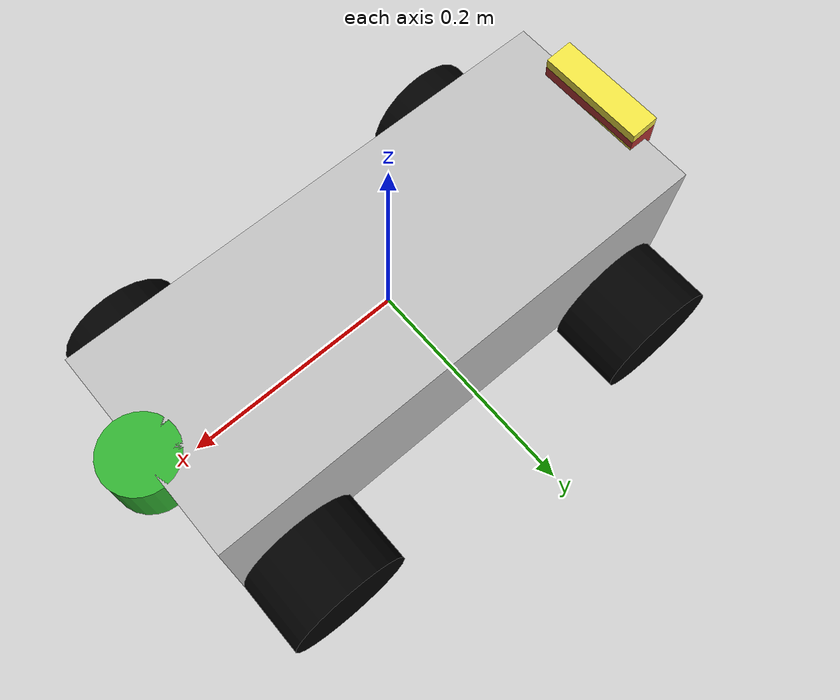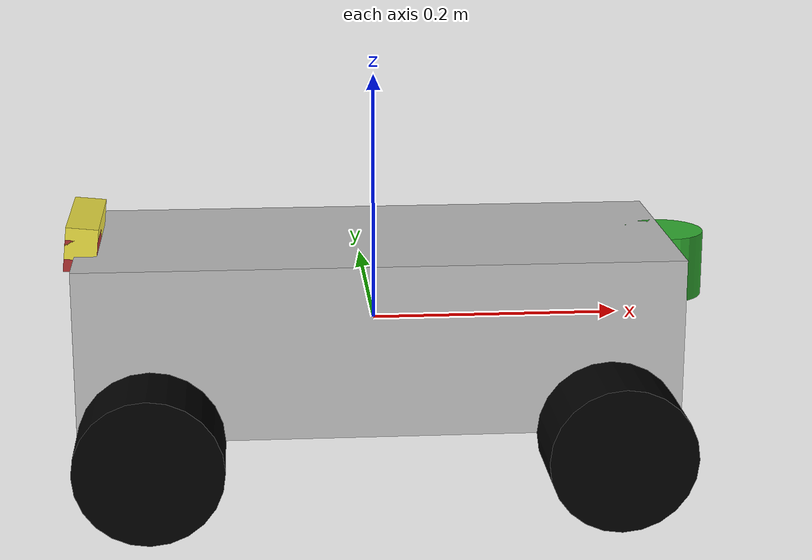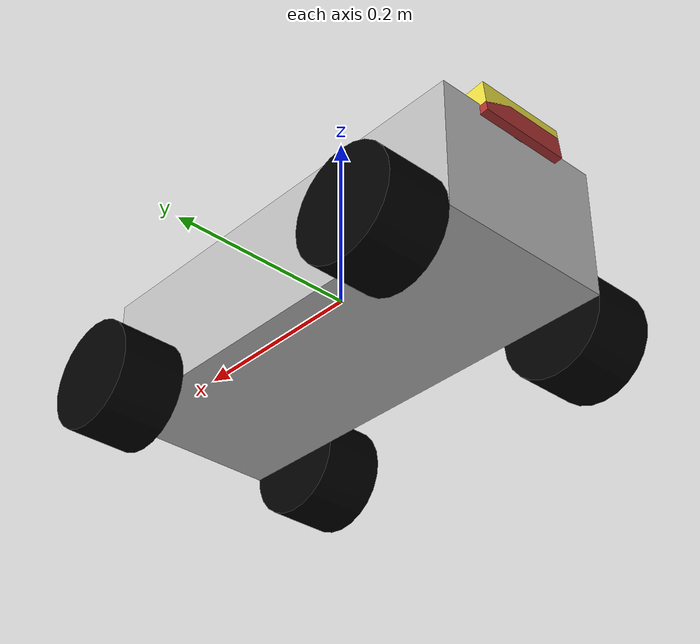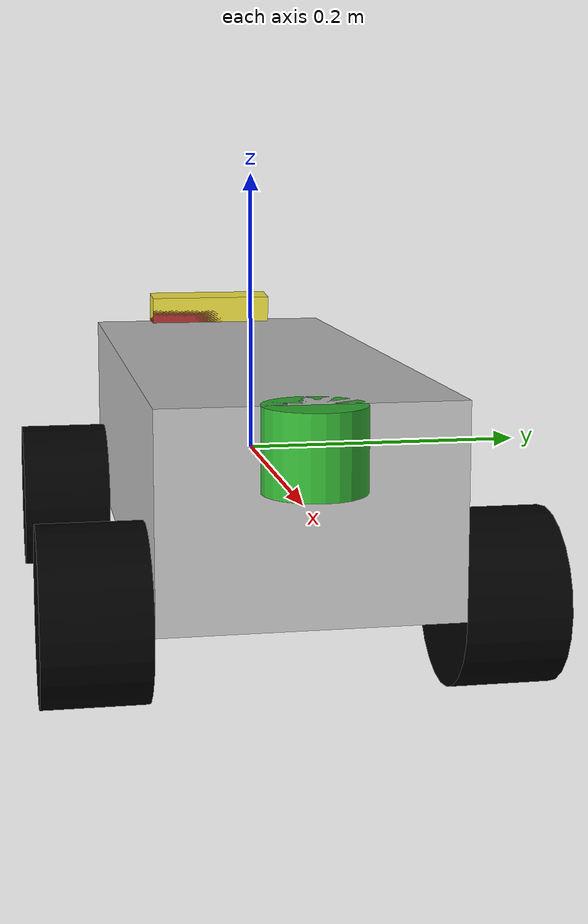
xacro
<?xml version="1.0"?>

<robot name="ackermann_steering_vehicle" xmlns:xacro="http://www.ros.org/wiki/xacro">

  <!--
  From here:
  https://github.com/lucasmazzetto/gazebo_ackermann_steering_vehicle/blob/main/model/vehicle.xacro
  -->
  <!-- Arguments -->
  <xacro:arg name="body_length" default=".474" />
  <xacro:arg name="body_width" default=".192" />
  <xacro:arg name="body_height" default="0.138" />
  <xacro:arg name="body_density" default="1000.0" />
  <xacro:arg name="wheel_radius" default="0.0575" />
  <xacro:arg name="wheel_width" default="0.068" />
  <xacro:arg name="wheel_base" default="0.275" />
  <xacro:arg name="wheel_density" default="1000.0" />
  <xacro:arg name="max_steering_angle" default="0.6108" />
  <xacro:arg name="max_steering_angular_velocity" default="1.570796" />
  <xacro:arg name="max_steering_effort" default="1.0" />
  <xacro:arg name="max_velocity" default="1.0" />
  <xacro:arg name="max_effort" default="10.0" />
  <xacro:arg name="camera_box_size" default="0.01" />
  <xacro:arg name="camera_stick_size" default="0.01" />
  <xacro:arg name="camera_pitch" default="0.1" />
  <xacro:arg name="camera_fov" default="1.570796" />
  <xacro:arg name="camera_fps" default="30" />
  <xacro:arg name="image_width" default="640" />
  <xacro:arg name="image_height" default="480" />

  <!-- Mathematical Constants -->
  <xacro:property name="PI" value="3.14159265"/>

  <!-- Vehicle Properties -->
  <xacro:property name="body_length" value="$(arg body_length)"/>
  <xacro:property name="body_width" value="$(arg body_width)"/>
  <xacro:property name="body_height" value="$(arg body_height)"/>
  <xacro:property name="body_density" value="$(arg body_density)"/>
  <xacro:property name="wheel_radius" value="$(arg wheel_radius)"/>
  <xacro:property name="wheel_width" value="$(arg wheel_width)"/>
  <xacro:property name="wheel_density" value="$(arg wheel_density)"/>
  <xacro:property name="max_steering_angle" value="$(arg max_steering_angle)"/>
  <xacro:property name="max_steering_angular_velocity" value="$(arg max_steering_angular_velocity)"/>
  <xacro:property name="max_steering_effort" value="$(arg max_steering_effort)"/>
  <xacro:property name="max_velocity" value="$(arg max_velocity)"/>
  <xacro:property name="max_effort" value="$(arg max_effort)"/>
  <xacro:property name="camera_box_size" value="$(arg camera_box_size)"/>
  <xacro:property name="camera_stick_size" value="$(arg camera_stick_size)"/>
  <xacro:property name="camera_height" value="$(arg camera_height)"/>
  <xacro:property name="camera_pitch" value="$(arg camera_pitch)"/>
  <xacro:property name="camera_fov" value="$(arg camera_fov)"/>
  <xacro:property name="camera_fps" value="$(arg camera_fps)"/>
  <xacro:property name="image_width" value="$(arg image_width)"/>
  <xacro:property name="image_height" value="$(arg image_height)"/>

  <xacro:property name="body_mass" value="${body_density * body_length * body_height * body_width}"/>
  <xacro:property name="body_inertia_x" value="${1.0/12.0 * body_mass * (body_height*body_height + body_width*body_width)}"/>
  <xacro:property name="body_inertia_y" value="${1.0/12.0 * body_mass * (body_length*body_length + body_height*body_height)}"/>
  <xacro:property name="body_inertia_z" value="${1.0/12.0 * body_mass * (body_length*body_length + body_width*body_width)}"/>
  <xacro:property name="wheel_separation" value="${body_width + wheel_width}"/>
  <xacro:property name="wheel_offset" value="${body_length/2 - wheel_radius}"/>
  <xacro:property name="wheel_mass" value="${wheel_density * PI * wheel_radius * wheel_radius * wheel_width}"/>
  <xacro:property name="wheel_inertia_x" value="${1.0/12.0 * wheel_mass * (3*wheel_radius*wheel_radius + wheel_width*wheel_width)}"/>
  <xacro:property name="wheel_inertia_y" value="${1.0/12.0 * wheel_mass * (3*wheel_radius*wheel_radius + wheel_width*wheel_width)}"/>
  <xacro:property name="wheel_inertia_z" value="${1.0/2.0 * wheel_mass * wheel_radius * wheel_radius}"/>
  <xacro:property name="max_wheel_angular_velocity" value="${max_velocity / wheel_radius}"/>

  <xacro:property name="camera_length" value=".0254" />
  <xacro:property name="camera_width" value=".10" />
  <xacro:property name="camera_height" value="0.0254" />
  <xacro:property name="lidar_radius" value=".0325" />
  <xacro:property name="lidar_height" value="0.0528" />

  <!-- Macros -->
  <xacro:macro name="box_inertia" params="m x y z">
    <inertia ixx="${m*(y*y+z*z)/12}" ixy = "0" ixz = "0" iyy="${m*(x*x+z*z)/12}" iyz = "0" izz="${m*(x*x+z*z)/12}" />
  </xacro:macro>

  <!-- Materials -->
  <material name="gray_25">
    <color rgba="0.25 0.25 0.25 1.0"/>
  </material>

  <material name="gray_50">
    <color rgba="0.50 0.50 0.50 1.0"/>
  </material>

  <material name="gray_75">
    <color rgba="0.75 0.75 0.75 1.0"/>
  </material>

  <material name="camera_color">
    <color rgba="0.70 0.2 0.2 1.0"/>
  </material>

  <material name="lidar_color">
    <color rgba="0.2 0.7 0.2 1.0"/>
  </material>
  <!-- Links -->

  <!-- Body Link -->
  <link name="base_link">
  </link>

  <link name="body_link">
      <visual>
      <origin xyz="0.0 0.0 0.0" rpy="0.0 0.0 0.0"/>
      <geometry>
        <box size="${body_length} ${body_width} ${body_height}"/>
      </geometry>
      <material name="gray_75"/>
    </visual>
    <collision>
      <origin xyz="0.0 0.0 0.0" rpy="0.0 0.0 0.0"/>
      <geometry>
        <box size="${body_length} ${body_width} ${body_height}"/>
      </geometry>
    </collision>
    <xacro:box_inertia m="3000" x="${body_length}" y="${body_width}" z="${body_height}"/>
  </link>

  <!-- Front Left Wheel -->
  <link name="front_left_wheel_link">
    <visual>
      <origin xyz="0.0 0.0 0.0" rpy="1.570795 0.0 0.0"/>
      <geometry>
        <cylinder radius="${wheel_radius}" length="${wheel_width}"/>
      </geometry>
      <material name="wheel_material">
        <color rgba="0.0 0.0 0.0 1.0"/>
      </material>
    </visual>
    <collision>
      <origin xyz="0.0 0.0 0.0" rpy="1.570795 0.0 0.0"/>
      <geometry>
        <cylinder radius="${wheel_radius}" length="${wheel_width}"/>
      </geometry>
    </collision>
    <inertial>
      <mass value="${wheel_mass}"/>
      <inertia ixx="${wheel_inertia_x}" ixy="0.0" ixz="0.0" iyy="${wheel_inertia_y}" iyz="0" izz="${wheel_inertia_z}"/>
      <origin xyz="0.0 0.0 0.0" rpy="1.570795 0.0 0.0"/>
    </inertial>
  </link>

    <!-- Front Left Wheel Steering -->
  <link name="front_left_steering_link">
    <visual>
      <origin xyz="0.0 0.0 0.0" rpy="1.570795 0.0 0.0"/>
      <geometry>
        <cylinder length="0.001" radius="0.01"/>
      </geometry>
      <material name="wheel_material">
        <color rgba="0.0 0.0 0.0 1.0"/>
      </material>
    </visual>
    <collision>
      <origin xyz="0.0 0.0 0.0" rpy="1.570795 0.0 0.0"/>
      <geometry>
        <cylinder length="0.001" radius="0.01"/>
      </geometry>
    </collision>
    <inertial>
      <mass value="0.01"/>
      <inertia ixx="0.001" ixy="0.0" ixz="0.0" iyy="0.001" iyz="0.0" izz="0.001"/>
      <origin xyz="0.0 0.0 0.0" rpy="1.570795 0.0 0.0"/>
    </inertial>
  </link>

  <!-- Front Right Wheel -->
  <link name="front_right_wheel_link">
    <visual>
      <origin xyz="0.0 0.0 0.0" rpy="1.570795 0.0 0.0"/>
      <geometry>
        <cylinder radius="${wheel_radius}" length="${wheel_width}"/>
      </geometry>
      <material name="wheel_material">
        <color rgba="0.0 0.0 0.0 1.0"/>
      </material>
    </visual>
    <collision>
      <origin xyz="0.0 0.0 0.0" rpy="1.570795 0.0 0.0"/>
      <geometry>
        <cylinder radius="${wheel_radius}" length="${wheel_width}"/>
      </geometry>
    </collision>
    <inertial>
      <mass value="${wheel_mass}"/>
      <inertia ixx="${wheel_inertia_x}" ixy="0.0" ixz="0.0" iyy="${wheel_inertia_y}" iyz="0" izz="${wheel_inertia_z}"/>
      <origin xyz="0.0 0.0 0.0" rpy="1.570795 0.0 0.0"/>
    </inertial>
  </link>

  <!-- Front Right Wheel Steering -->
  <link name="front_right_steering_link">
    <visual>
      <origin xyz="0.0 0.0 0.0" rpy="1.570795 0.0 0.0"/>
      <geometry>
        <cylinder length="0.001" radius="0.01"/>
      </geometry>
      <material name="wheel_material">
        <color rgba="0.0 0.0 0.0 1.0"/>
      </material>
    </visual>
    <collision>
      <origin xyz="0.0 0.0 0.0" rpy="1.570795 0.0 0.0"/>
      <geometry>
        <cylinder length="0.001" radius="0.01"/>
      </geometry>
    </collision>
    <inertial>
      <mass value="0.01"/>
      <inertia ixx="0.001" ixy="0.0" ixz="0.0" iyy="0.001" iyz="0.0" izz="0.001"/>
      <origin xyz="0.0 0.0 0.0" rpy="1.570795 0.0 0.0"/>
    </inertial>
  </link>

  <!-- Rear Left Wheel -->
  <link name="rear_left_wheel_link">
    <visual>
      <origin xyz="0.0 0.0 0.0" rpy="1.570795 0.0 0.0"/>
      <geometry>
        <cylinder radius="${wheel_radius}" length="${wheel_width}"/>
      </geometry>
      <material name="wheel_material">
        <color rgba="0.0 0.0 0.0 1.0"/>
      </material>
    </visual>
    <collision>
      <origin xyz="0.0 0.0 0.0" rpy="1.570795 0.0 0.0"/>
      <geometry>
        <cylinder radius="${wheel_radius}" length="${wheel_width}"/>
      </geometry>
    </collision>
    <inertial>
      <mass value="2"/>
      <inertia ixx="${wheel_inertia_x}" ixy="0.0" ixz="0.0" iyy="${wheel_inertia_y}" iyz="0" izz="${wheel_inertia_z}"/>
      <origin xyz="0.0 0.0 0.0" rpy="1.570795 0.0 0.0"/>
    </inertial>
  </link>

  <!-- Rear Right Wheel -->
  <link name="rear_right_wheel_link">
    <visual>
      <origin xyz="0.0 0.0 0.0" rpy="1.570795 0.0 0.0"/>
      <geometry>
        <cylinder radius="${wheel_radius}" length="${wheel_width}"/>
      </geometry>
      <material name="wheel_material">
        <color rgba="0.0 0.0 0.0 1.0"/>
      </material>
    </visual>
    <collision>
      <origin xyz="0.0 0.0 0.0" rpy="1.570795 0.0 0.0"/>
      <geometry>
        <cylinder radius="${wheel_radius}" length="${wheel_width}"/>
      </geometry>
    </collision>
    <inertial>
      <mass value="2"/>
      <inertia ixx="${wheel_inertia_x}" ixy="0.0" ixz="0.0" iyy="${wheel_inertia_y}" iyz="0" izz="${wheel_inertia_z}"/>
      <origin xyz="0.0 0.0 0.0" rpy="1.570795 0.0 0.0"/>
    </inertial>
  </link>

  <!-- Camera Stick Link -->
  <link name="camera_stick_link">
    <collision>
      <origin xyz="0 0 0" rpy="0 0 0"/>
      <geometry>
        <box size="${camera_stick_size} ${camera_stick_size} ${camera_height}"/>
      </geometry>
    </collision>

    <visual>
      <origin xyz="0 0 0" rpy="0 0 0"/>
      <geometry>
        <box size="${camera_stick_size} ${camera_stick_size} ${camera_height}"/>
      </geometry>

      <material name="camera_stick_material">
        <color rgba="0.25 0.25 0.25 1.0"/>
      </material>
    </visual>

    <inertial>
      <mass value="1e-5" />
      <origin xyz="0 0 0" rpy="0 0 0"/>
      <inertia ixx="1e-6" ixy="0" ixz="0" iyy="1e-6" iyz="0" izz="1e-6" />
    </inertial>
  </link>

  <!-- Camera Link -->
  <link name="camera_link">
    <collision>
      <origin xyz="0 0 0" rpy="0 0 0"/>
      <geometry>
        <box size="${camera_length} ${camera_width} ${camera_height}"/>
      </geometry>
    </collision>

    <visual>
      <origin xyz="0 0 0" rpy="0 0 0"/>
      <geometry>
        <box size="${camera_length} ${camera_width} ${camera_height}"/>
      </geometry>

      <material name="camera_color" />
    </visual>

    <inertial>
      <mass value="1e-5" />
      <origin xyz="0 0 0" rpy="0 0 0"/>
      <inertia ixx="1e-6" ixy="0" ixz="0" iyy="1e-6" iyz="0" izz="1e-6" />
    </inertial>
  </link>

  <!-- Lidar Link -->
  <link name="lidar_link">
    <collision>
      <origin xyz="0 0 0" rpy="0 0 0"/>
      <geometry>
        <cylinder radius="${lidar_radius}" length="${lidar_height}"/>
      </geometry>
    </collision>

    <visual>
      <origin xyz="0 0 0" rpy="0 0 0"/>
      <geometry>
        <cylinder radius="${lidar_radius}" length="${lidar_height}"/>
      </geometry>
      <material name="lidar_color"/>
    </visual>
  </link>

  <!-- IMU Link -->
  <link name="imu_link">
    <collision>
      <origin xyz="0 0 0" rpy="0 0 0"/>
      <geometry>
        <box size="${camera_length} ${camera_width} ${camera_height}"/>
      </geometry>
    </collision>

    <visual>
      <origin xyz="0 0 0" rpy="0 0 0"/>
      <geometry>
        <box size="${camera_length} ${camera_width} ${camera_height}"/>
      </geometry>
    </visual>

    <xacro:box_inertia m="0.1" x="0.1" y="0.1" z="0.1"/>
  </link>

  <link name="steering_wheel_link">
    <inertial>
      <mass value="1e-5" />
      <origin xyz="0 0 0" rpy="0 0 0"/>
      <inertia ixx="1e-6" ixy="0" ixz="0" iyy="1e-6" iyz="0" izz="1e-6" />
    </inertial>
  </link>

  <!-- Joints -->
  <joint name="body_joint" type="fixed">
    <origin xyz="0 0 0" rpy="0 0 0"/>
    <parent link="base_link"/>
    <child link="body_link"/>
  </joint>

  <!-- Front Left Steering Joint -->
  <joint name="front_left_steering_joint" type="revolute">
    <origin xyz="${wheel_offset} ${wheel_separation/2} -${body_height/2}" rpy="0 0 0"/>
    <parent link="base_link"/>
    <child link="front_left_steering_link"/>
    <axis xyz="0 0 1"/>
    <limit effort="${max_steering_effort}" lower="${-max_steering_angle}" upper="${max_steering_angle}" velocity="${max_steering_angular_velocity}"/>
    <dynamics damping="0.1" friction="0.1"/>
  </joint>

  <!-- Front Left Wheel Joint -->
  <joint name="front_left_wheel_joint" type="continuous">
    <origin xyz="0 0 0" rpy="0 0 0"/>
    <parent link="front_left_steering_link"/>
    <child link="front_left_wheel_link"/>
    <axis xyz="0 1 0"/>
    <limit effort="${max_effort}" velocity="${max_wheel_angular_velocity}"/>
    <dynamics damping="0.1" friction="0.1"/>
  </joint>

  <!-- Front Right Steering Joint -->
  <joint name="front_right_steering_joint" type="revolute">
    <origin xyz="${wheel_offset} ${-wheel_separation/2} -${body_height/2}" rpy="0 0 0"/>
    <parent link="base_link"/>
    <child link="front_right_steering_link"/>
    <axis xyz="0 0 1"/>
    <limit effort="${max_steering_effort}" lower="${-max_steering_angle}" upper="${max_steering_angle}" velocity="${max_steering_angular_velocity}"/>
    <dynamics damping="0.1" friction="0.1"/>
  </joint>

  <!-- Front Right Wheel Joint -->
  <joint name="front_right_wheel_joint" type="continuous">
    <origin xyz="0 0 0" rpy="0 0 0"/>
    <parent link="front_right_steering_link"/>
    <child link="front_right_wheel_link"/>
    <axis xyz="0 1 0"/>
    <limit effort="${max_effort}" velocity="${max_wheel_angular_velocity}"/>
    <dynamics damping="0.1" friction="0.1"/>
  </joint>

  <!-- Rear Left Wheel Joint -->
  <joint name="rear_left_wheel_joint" type="continuous">
    <origin xyz="-${wheel_offset} ${wheel_separation/2} -${body_height/2}" rpy="0 0 0"/>
    <parent link="base_link"/>
    <child link="rear_left_wheel_link"/>
    <axis xyz="0 1 0"/>
    <limit effort="${max_effort}" velocity="${max_wheel_angular_velocity}"/>
    <dynamics damping="0.1" friction="0.1"/>
  </joint>

  <!-- Rear Right Wheel Joint -->
  <joint name="rear_right_wheel_joint" type="continuous">
    <origin xyz="-${wheel_offset} ${-wheel_separation/2} -${body_height/2}" rpy="0 0 0"/>
    <parent link="base_link"/>
    <child link="rear_right_wheel_link"/>
    <axis xyz="0 1 0"/>
    <limit effort="${max_effort}" velocity="${max_wheel_angular_velocity}"/>
    <dynamics damping="0.1" friction="0.1"/>
  </joint>

  <!-- Camera Stick Joint -->
  <joint name="camera_stick_joint" type="fixed">
    <axis xyz="0 1 0" />
    <origin xyz="-${body_length/2 - camera_stick_size/2} 0 ${body_height/2}" rpy="0.0 0.0 0.0"/>
    <parent link="base_link"/>
    <child link="camera_stick_link"/>
  </joint>

  <!-- Camera Joint -->
  <joint name="camera_joint" type="fixed">
    <axis xyz="0 1 0" />
    <origin xyz="0.0 0.0 0.0" rpy="0 ${camera_pitch} 0"/>
    <parent link="camera_stick_link"/>
    <child link="camera_link"/>
  </joint>

  <!-- Lidar Joint -->
  <joint name="lidar_joint" type="fixed">
    <axis xyz="0 1 0"/>
    <origin xyz="${body_length/2} 0 ${body_height/2 - lidar_height/2}" rpy="0.0 0.0 0.0"/>
    <parent link="base_link"/>
    <child link="lidar_link"/>
  </joint>

  <!-- IMU Joint -->
  <joint name="imu_joint" type="fixed">
    <parent link="camera_link"/>
    <child link="imu_link"/>
    <origin xyz="0 0 0.01"/>
  </joint>

  <joint name="steering_wheel_joint" type="continuous">
    <parent link="base_link"/>
    <child link="steering_wheel_link"/>
    <origin xyz="0 0 0.0"/>
  </joint>
  <!-- Gazebo Parameters -->
  <gazebo reference="base_link">
    <mu1>0.0001</mu1>
    <mu2>0.0001</mu2>
  </gazebo>

  <gazebo reference="front_right_wheel_link">
    <mu1>100.0</mu1>
    <mu2>100.0</mu2>
  </gazebo>

  <gazebo reference="front_left_wheel_link">
    <mu1>100.0</mu1>
    <mu2>100.0</mu2>
  </gazebo>

  <gazebo reference="rear_right_wheel_link">
    <mu1>100.0</mu1>
    <mu2>100.0</mu2>
  </gazebo>

  <gazebo reference="rear_left_wheel_link">
    <mu1>100.0</mu1>
    <mu2>100.0</mu2>
  </gazebo>

  <!-- Gazebo Control -->
  <ros2_control name="GazeboSimSystem" type="system">
    <hardware>
      <plugin>gz_ros2_control/GazeboSimSystem</plugin>
    </hardware>

    <joint name="front_left_steering_joint">
      <command_interface name="position">
        <param name="min">${-max_steering_angle}</param>
        <param name="max">${max_steering_angle}</param>
      </command_interface>

      <state_interface name="position"/>
      <state_interface name="velocity"/>
      <state_interface name="effort"/>
    </joint>

    <joint name="front_right_steering_joint">
      <command_interface name="position">
        <param name="min">${-max_steering_angle}</param>
        <param name="max">${max_steering_angle}</param>
      </command_interface>

      <state_interface name="position"/>
      <state_interface name="velocity"/>
      <state_interface name="effort"/>
    </joint>

    <joint name="rear_left_wheel_joint">
      <command_interface name="velocity">
        <param name="min">${-max_wheel_angular_velocity}</param>
        <param name="max">${max_wheel_angular_velocity}</param>
      </command_interface>

      <state_interface name="position"/>
      <state_interface name="velocity"/>
      <state_interface name="effort"/>
    </joint>

    <joint name="rear_right_wheel_joint">
      <command_interface name="velocity">
        <param name="min">${-max_wheel_angular_velocity}</param>
        <param name="max">${max_wheel_angular_velocity}</param>
      </command_interface>

      <state_interface name="position"/>
      <state_interface name="velocity"/>
      <state_interface name="effort"/>
    </joint>

    <joint name="steering_wheel_joint">
    </joint>
  </ros2_control>

  <!-- Gazebo Plugins -->
  <gazebo>
    <plugin
      filename="libignition-gazebo-ackermann-steering-system"
      name="ignition::gazebo::systems::AckermannSteering">
      <left_joint>front_left_wheel_joint</left_joint>
      <left_joint>rear_left_wheel_joint</left_joint>
      <right_joint>front_right_wheel_joint</right_joint>
      <right_joint>rear_right_wheel_joint</right_joint>
      <left_steering_joint>front_left_steering_joint</left_steering_joint>
      <right_steering_joint>front_right_steering_joint</right_steering_joint>
      <kingpin_width>1.0</kingpin_width>
      <steering_limit>0.5</steering_limit>
      <wheel_base>1.0</wheel_base>
      <wheel_separation>1.25</wheel_separation>
      <wheel_radius>0.3</wheel_radius>
      <min_velocity>-1</min_velocity>
      <max_velocity>1</max_velocity>
      <min_acceleration>-3</min_acceleration>
      <max_acceleration>3</max_acceleration>
      <topic>cmd_vel</topic>
    </plugin>

    <plugin filename="libignition-gazebo-joint-state-publisher-system.so"
      name="ignition::gazebo::systems::JointStatePublisher">
      <topic>joint_states</topic>
      <update_rate>100</update_rate>
    </plugin>

    <plugin filename="gz_ros2_control-system" name="gz_ros2_control::GazeboSimROS2ControlPlugin">
      <parameters>$(find robot_challenge_description)/config/gz_ros2_control.yaml</parameters>
    </plugin>

  </gazebo>

  <!-- Camera -->
  <gazebo reference="camera_link">
    <sensor name="vehicle_front_camera" type="camera">
      <update_rate>${camera_fps}</update_rate>
      <visualize>true</visualize>
      <topic>camera</topic>

      <camera name="head">
        <horizontal_fov>${camera_fov}</horizontal_fov>
        <image>
          <width>${image_width}</width>
          <height>${image_height}</height>
          <format>R8G8B8</format>
        </image>
        <clip>
          <near>0.02</near>
          <far>300</far>
        </clip>
        <noise>
          <type>gaussian</type>
          <mean>0.0</mean>
          <stddev>0.007</stddev>
        </noise>
      </camera>
    </sensor>
  </gazebo>

 <gazebo reference="imu_link">
  <sensor name="imu_sensor" type="imu">
    <always_on>true</always_on>
    <update_rate>100</update_rate>
    <visualize>true</visualize>
    <imu>
      <angular_velocity>
        <x>
          <noise type="gaussian">
            <mean>0.0</mean>
            <stddev>2e-4</stddev>
            <bias_mean>0.0000075</bias_mean>
            <bias_stddev>0.0000008</bias_stddev>
          </noise>
        </x>
        <y>
          <noise type="gaussian">
            <mean>0.0</mean>
            <stddev>2e-4</stddev>
            <bias_mean>0.0000075</bias_mean>
            <bias_stddev>0.0000008</bias_stddev>
          </noise>
        </y>
        <z>
          <noise type="gaussian">
            <mean>0.0</mean>
            <stddev>2e-4</stddev>
            <bias_mean>0.0000075</bias_mean>
            <bias_stddev>0.0000008</bias_stddev>
          </noise>
        </z>
      </angular_velocity>
      <linear_acceleration>
        <x>
          <noise type="gaussian">
            <mean>0.0</mean>
            <stddev>1.7e-2</stddev>
            <bias_mean>0.1</bias_mean>
            <bias_stddev>0.001</bias_stddev>
          </noise>
        </x>
        <y>
          <noise type="gaussian">
            <mean>0.0</mean>
            <stddev>1.7e-2</stddev>
            <bias_mean>0.1</bias_mean>
            <bias_stddev>0.001</bias_stddev>
          </noise>
        </y>
        <z>
          <noise type="gaussian">
            <mean>0.0</mean>
            <stddev>1.7e-2</stddev>
            <bias_mean>0.1</bias_mean>
            <bias_stddev>0.001</bias_stddev>
          </noise>
        </z>
      </linear_acceleration>
    </imu>
  </sensor>
</gazebo>

<gazebo reference="lidar_link">
  <sensor name="lidar_sensor" type="gpu_lidar">
    <pose> 0 0 0 0 0 0 </pose>
    <update_rate>10</update_rate>
    <topic>LaserScan</topic>
    <always_on>1</always_on>
    <visualize>true</visualize>
    <ray>
      <scan>
          <horizontal>
              <samples>500</samples>
              <resolution>1</resolution>
              <min_angle>-3.142</min_angle>
              <max_angle>3.142</max_angle>
          </horizontal>
          <vertical>
              <samples>1</samples>
              <resolution>1</resolution>
              <min_angle>0</min_angle>
              <max_angle>0</max_angle>
          </vertical>
      </scan>

      <range>
          <min>0.3</min>
          <max>40.0</max>
          <resolution>0.001</resolution>
      </range>

      <noise>
          <type>gaussian</type>
          <mean>0.0</mean>
          <stddev>0.0</stddev>
      </noise>
    </ray>
  </sensor>
</gazebo>

</robot>
